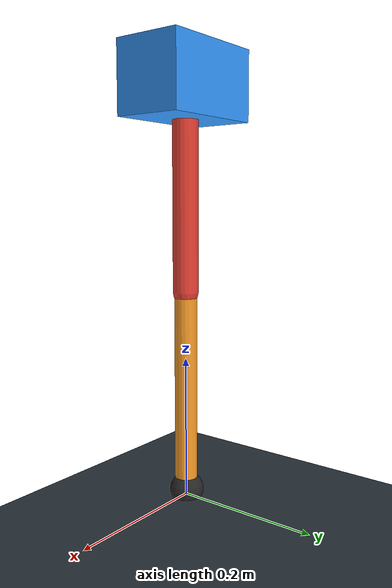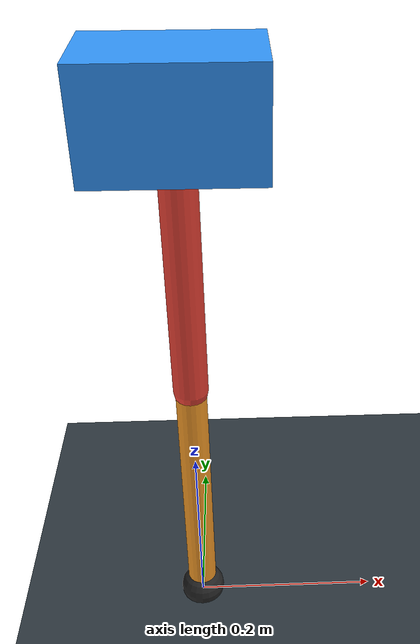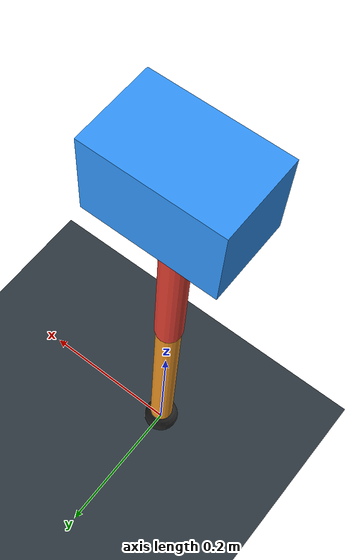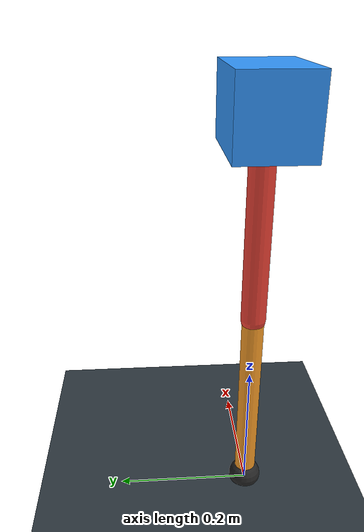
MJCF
<mujoco model="single_axis_two_bar">
  <compiler angle="radian" inertiafromgeom="true"/>
  <option timestep="0.001" integrator="implicitfast" gravity="0 0 -9.81"/>
  <default>
    <joint damping="0.08"/>
    <geom friction="1.2 0.01 0.0001" condim="3"/>
  </default>
  <worldbody>
    <geom name="floor" type="plane" size="5 5 0.1" rgba="0.18 0.22 0.25 1"/>
    <body name="carriage" pos="0 0 0.5833387970972916">
      <joint name="pole_slide" type="slide" axis="0 0 1"/>
      <geom name="payload" type="box" size="0.08 0.05 0.05" mass="3.893061237475213" rgba="0.2 0.6 1 1"/>
      <body name="thigh" pos="0 0 0">
        <joint name="hip" type="hinge" axis="0 1 0"/>
        <geom name="thigh_link" type="capsule" fromto="0 0 0 0 0 -0.28772849926248656" size="0.018" mass="0.2050103577211955" rgba="0.9 0.25 0.2 1"/>
        <body name="shank" pos="0 0 -0.28772849926248656">
          <joint name="knee" type="hinge" axis="0 1 0"/>
          <geom name="shank_link" type="capsule" fromto="0 0 0 0 0 -0.2878785080543089" size="0.016" mass="0.2051172409675602" rgba="0.95 0.6 0.15 1"/>
          <geom name="foot" type="sphere" pos="0 0 -0.2878785080543089" size="0.025" mass="0.03" rgba="0.15 0.15 0.15 1"/>
          <site name="toe" pos="0 0 -0.2878785080543089" size="0.008"/>
        </body>
      </body>
    </body>
  </worldbody>
  <actuator>
    <motor name="hip_motor" joint="hip" ctrlrange="-58.937476868151066 58.937476868151066"/>
    <motor name="knee_motor" joint="knee" ctrlrange="-164.18745030813983 164.18745030813983"/>
  </actuator>
</mujoco>
